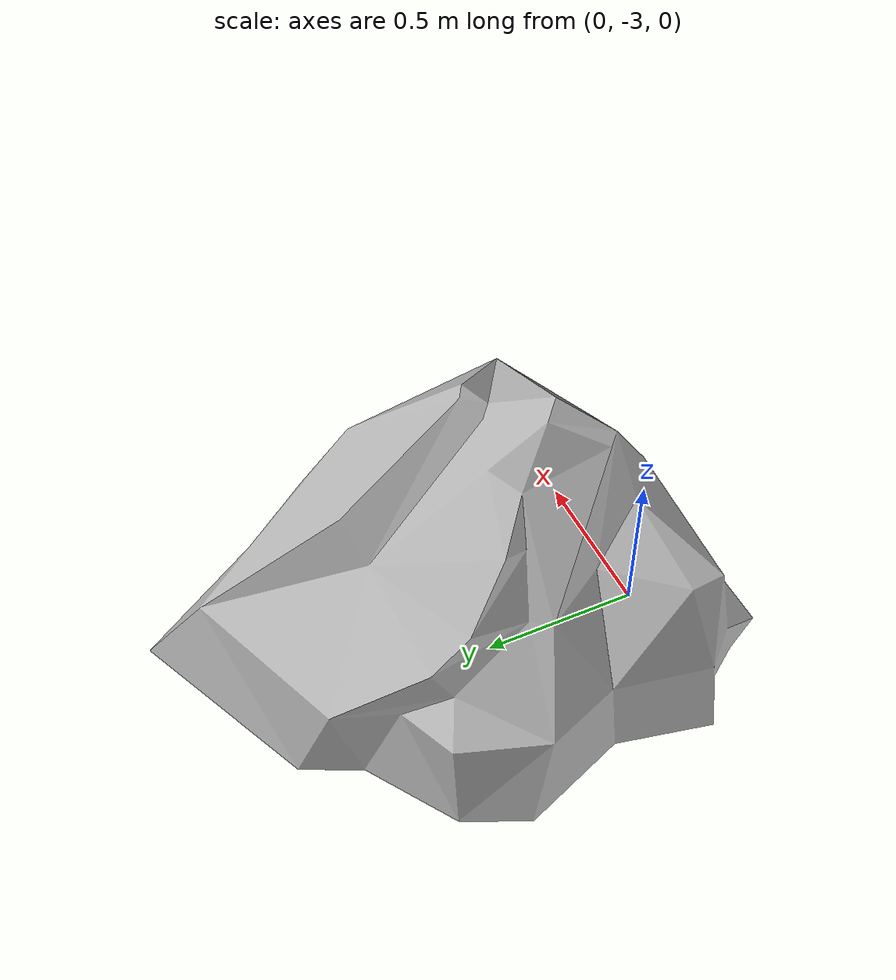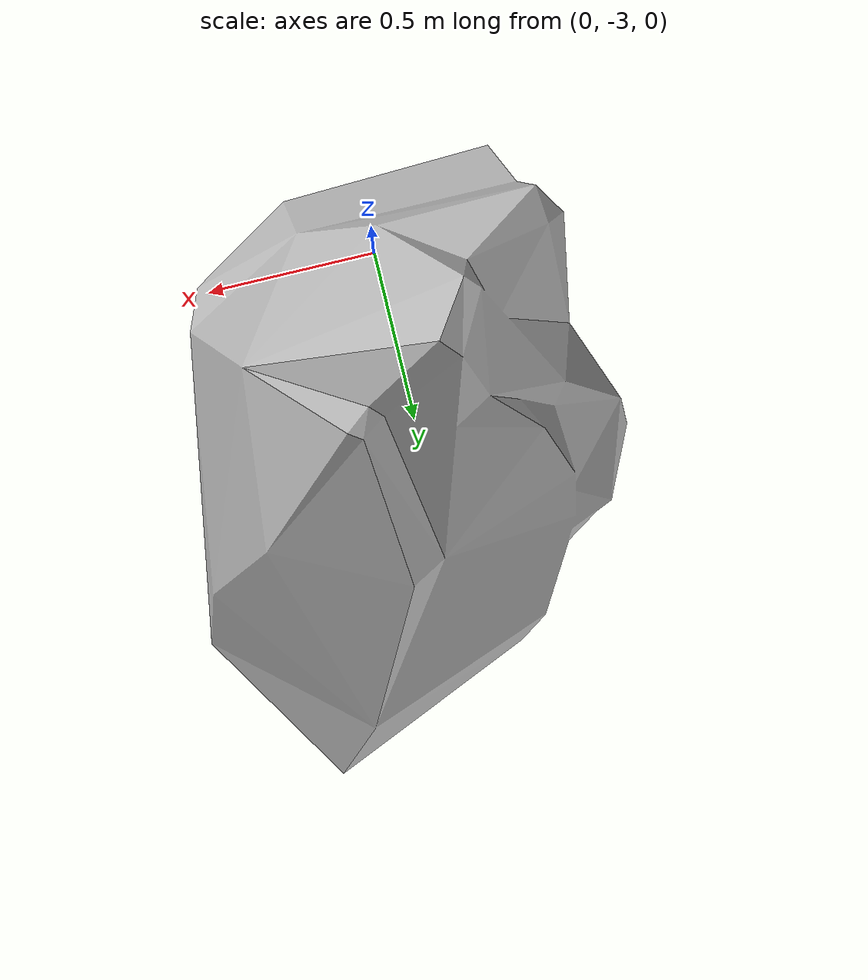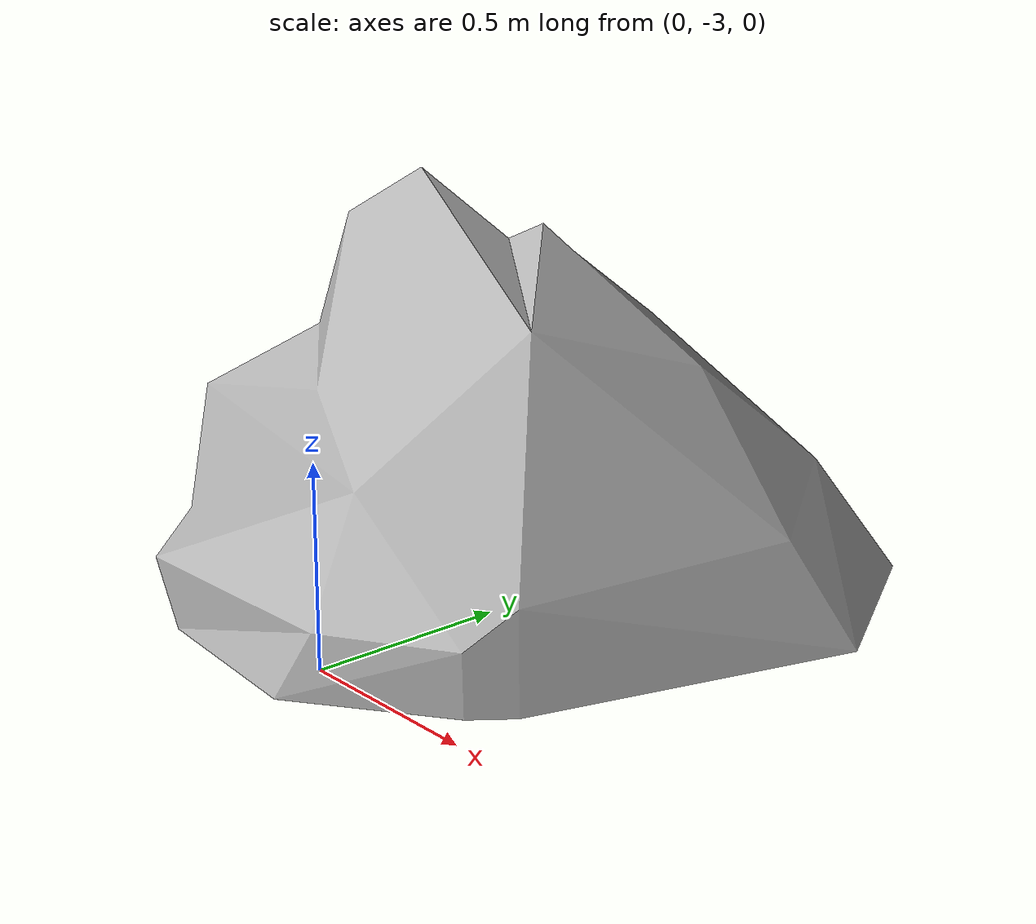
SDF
<sdf version="1.6">
 <world name="SRC_finals">
  <include>
   <name>bling_1</name>
   <pose>0.08999999999999968
      -2.624
      0
      0
      0
      3.141592653589793</pose>
   <uri>model://mars_rock_3</uri>
  </include>
 </world>
</sdf>
